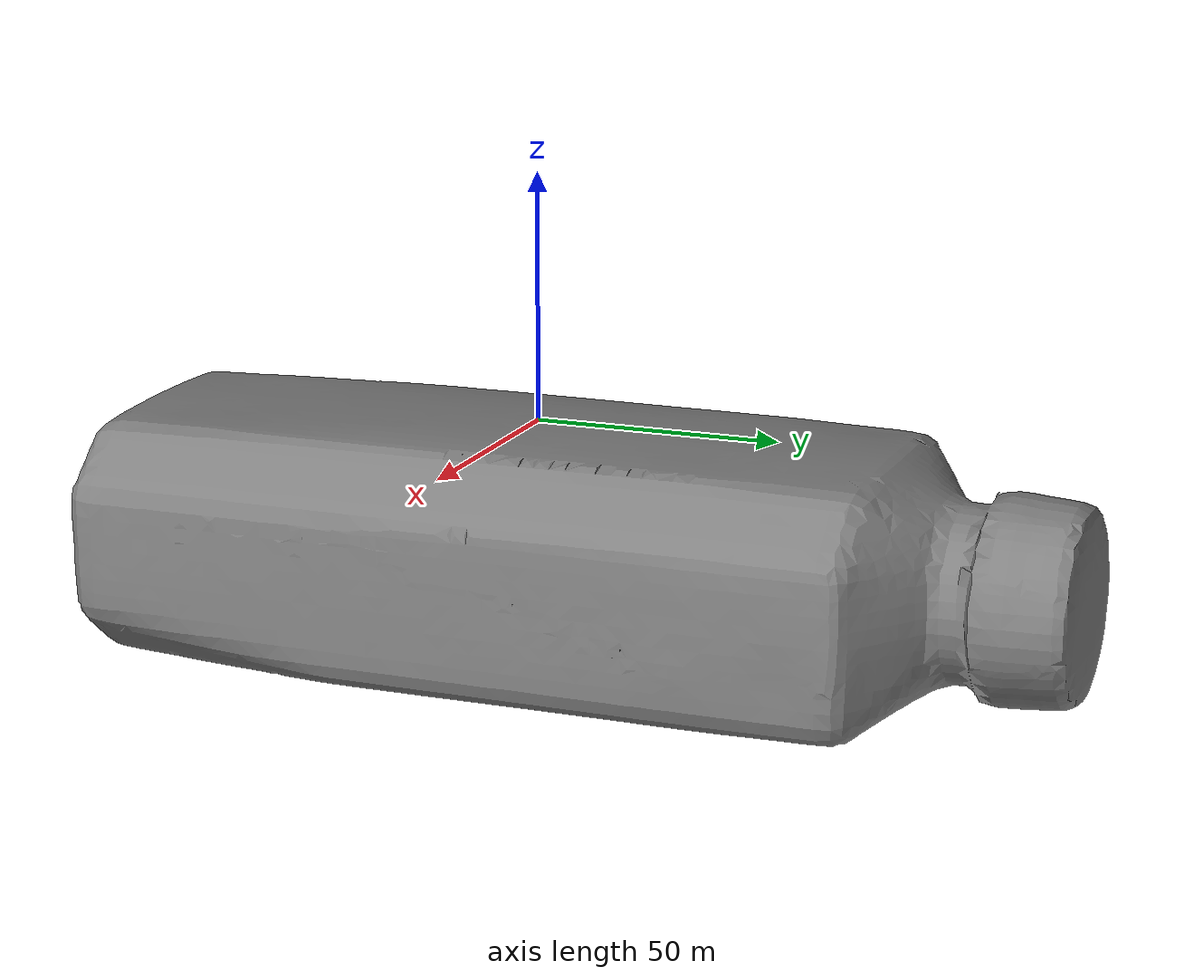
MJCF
<mujoco model="barleyWater_simple">
  <default>
    <default class="visual">
      <geom group="2" type="mesh" contype="0" conaffinity="0"/>
    </default>
    <default class="collision">
      <geom group="3" type="mesh"/>
    </default>
  </default>
  <asset>
    <mesh file="barleyWater_simple.obj"/>
    <mesh file="barleyWater_simple_collision_0.obj"/>
    <mesh file="barleyWater_simple_collision_1.obj"/>
    <mesh file="barleyWater_simple_collision_2.obj"/>
    <mesh file="barleyWater_simple_collision_3.obj"/>
    <mesh file="barleyWater_simple_collision_4.obj"/>
    <mesh file="barleyWater_simple_collision_5.obj"/>
    <mesh file="barleyWater_simple_collision_6.obj"/>
    <mesh file="barleyWater_simple_collision_7.obj"/>
    <mesh file="barleyWater_simple_collision_8.obj"/>
    <mesh file="barleyWater_simple_collision_9.obj"/>
    <mesh file="barleyWater_simple_collision_10.obj"/>
    <mesh file="barleyWater_simple_collision_11.obj"/>
    <mesh file="barleyWater_simple_collision_12.obj"/>
    <mesh file="barleyWater_simple_collision_13.obj"/>
    <mesh file="barleyWater_simple_collision_14.obj"/>
    <mesh file="barleyWater_simple_collision_15.obj"/>
    <mesh file="barleyWater_simple_collision_16.obj"/>
    <mesh file="barleyWater_simple_collision_17.obj"/>
    <mesh file="barleyWater_simple_collision_18.obj"/>
    <mesh file="barleyWater_simple_collision_19.obj"/>
    <mesh file="barleyWater_simple_collision_20.obj"/>
    <mesh file="barleyWater_simple_collision_21.obj"/>
    <mesh file="barleyWater_simple_collision_22.obj"/>
    <mesh file="barleyWater_simple_collision_23.obj"/>
    <mesh file="barleyWater_simple_collision_24.obj"/>
    <mesh file="barleyWater_simple_collision_25.obj"/>
    <mesh file="barleyWater_simple_collision_26.obj"/>
    <mesh file="barleyWater_simple_collision_27.obj"/>
    <mesh file="barleyWater_simple_collision_28.obj"/>
    <mesh file="barleyWater_simple_collision_29.obj"/>
    <mesh file="barleyWater_simple_collision_30.obj"/>
    <mesh file="barleyWater_simple_collision_31.obj"/>
    <mesh file="barleyWater_simple_collision_32.obj"/>
    <mesh file="barleyWater_simple_collision_33.obj"/>
    <mesh file="barleyWater_simple_collision_34.obj"/>
    <mesh file="barleyWater_simple_collision_35.obj"/>
    <mesh file="barleyWater_simple_collision_36.obj"/>
    <mesh file="barleyWater_simple_collision_37.obj"/>
    <mesh file="barleyWater_simple_collision_38.obj"/>
    <mesh file="barleyWater_simple_collision_39.obj"/>
    <mesh file="barleyWater_simple_collision_40.obj"/>
    <mesh file="barleyWater_simple_collision_41.obj"/>
    <mesh file="barleyWater_simple_collision_42.obj"/>
    <mesh file="barleyWater_simple_collision_43.obj"/>
    <mesh file="barleyWater_simple_collision_44.obj"/>
    <mesh file="barleyWater_simple_collision_45.obj"/>
    <mesh file="barleyWater_simple_collision_46.obj"/>
    <mesh file="barleyWater_simple_collision_47.obj"/>
    <mesh file="barleyWater_simple_collision_48.obj"/>
    <mesh file="barleyWater_simple_collision_49.obj"/>
    <mesh file="barleyWater_simple_collision_50.obj"/>
    <mesh file="barleyWater_simple_collision_51.obj"/>
    <mesh file="barleyWater_simple_collision_52.obj"/>
    <mesh file="barleyWater_simple_collision_53.obj"/>
    <mesh file="barleyWater_simple_collision_54.obj"/>
    <mesh file="barleyWater_simple_collision_55.obj"/>
    <mesh file="barleyWater_simple_collision_56.obj"/>
    <mesh file="barleyWater_simple_collision_57.obj"/>
    <mesh file="barleyWater_simple_collision_58.obj"/>
    <mesh file="barleyWater_simple_collision_59.obj"/>
    <mesh file="barleyWater_simple_collision_60.obj"/>
    <mesh file="barleyWater_simple_collision_61.obj"/>
    <mesh file="barleyWater_simple_collision_62.obj"/>
    <mesh file="barleyWater_simple_collision_63.obj"/>
    <mesh file="barleyWater_simple_collision_64.obj"/>
    <mesh file="barleyWater_simple_collision_65.obj"/>
    <mesh file="barleyWater_simple_collision_66.obj"/>
    <mesh file="barleyWater_simple_collision_67.obj"/>
    <mesh file="barleyWater_simple_collision_68.obj"/>
    <mesh file="barleyWater_simple_collision_69.obj"/>
    <mesh file="barleyWater_simple_collision_70.obj"/>
    <mesh file="barleyWater_simple_collision_71.obj"/>
    <mesh file="barleyWater_simple_collision_72.obj"/>
    <mesh file="barleyWater_simple_collision_73.obj"/>
    <mesh file="barleyWater_simple_collision_74.obj"/>
    <mesh file="barleyWater_simple_collision_75.obj"/>
    <mesh file="barleyWater_simple_collision_76.obj"/>
    <mesh file="barleyWater_simple_collision_77.obj"/>
    <mesh file="barleyWater_simple_collision_78.obj"/>
    <mesh file="barleyWater_simple_collision_79.obj"/>
    <mesh file="barleyWater_simple_collision_80.obj"/>
    <mesh file="barleyWater_simple_collision_81.obj"/>
    <mesh file="barleyWater_simple_collision_82.obj"/>
    <mesh file="barleyWater_simple_collision_83.obj"/>
    <mesh file="barleyWater_simple_collision_84.obj"/>
    <mesh file="barleyWater_simple_collision_85.obj"/>
    <mesh file="barleyWater_simple_collision_86.obj"/>
    <mesh file="barleyWater_simple_collision_87.obj"/>
    <mesh file="barleyWater_simple_collision_88.obj"/>
    <mesh file="barleyWater_simple_collision_89.obj"/>
    <mesh file="barleyWater_simple_collision_90.obj"/>
    <mesh file="barleyWater_simple_collision_91.obj"/>
    <mesh file="barleyWater_simple_collision_92.obj"/>
    <mesh file="barleyWater_simple_collision_93.obj"/>
    <mesh file="barleyWater_simple_collision_94.obj"/>
    <mesh file="barleyWater_simple_collision_95.obj"/>
    <mesh file="barleyWater_simple_collision_96.obj"/>
    <mesh file="barleyWater_simple_collision_97.obj"/>
    <mesh file="barleyWater_simple_collision_98.obj"/>
    <mesh file="barleyWater_simple_collision_99.obj"/>
    <mesh file="barleyWater_simple_collision_100.obj"/>
    <mesh file="barleyWater_simple_collision_101.obj"/>
    <mesh file="barleyWater_simple_collision_102.obj"/>
    <mesh file="barleyWater_simple_collision_103.obj"/>
    <mesh file="barleyWater_simple_collision_104.obj"/>
    <mesh file="barleyWater_simple_collision_105.obj"/>
    <mesh file="barleyWater_simple_collision_106.obj"/>
    <mesh file="barleyWater_simple_collision_107.obj"/>
    <mesh file="barleyWater_simple_collision_108.obj"/>
    <mesh file="barleyWater_simple_collision_109.obj"/>
    <mesh file="barleyWater_simple_collision_110.obj"/>
    <mesh file="barleyWater_simple_collision_111.obj"/>
    <mesh file="barleyWater_simple_collision_112.obj"/>
    <mesh file="barleyWater_simple_collision_113.obj"/>
    <mesh file="barleyWater_simple_collision_114.obj"/>
    <mesh file="barleyWater_simple_collision_115.obj"/>
    <mesh file="barleyWater_simple_collision_116.obj"/>
    <mesh file="barleyWater_simple_collision_117.obj"/>
    <mesh file="barleyWater_simple_collision_118.obj"/>
    <mesh file="barleyWater_simple_collision_119.obj"/>
    <mesh file="barleyWater_simple_collision_120.obj"/>
    <mesh file="barleyWater_simple_collision_121.obj"/>
    <mesh file="barleyWater_simple_collision_122.obj"/>
    <mesh file="barleyWater_simple_collision_123.obj"/>
    <mesh file="barleyWater_simple_collision_124.obj"/>
    <mesh file="barleyWater_simple_collision_125.obj"/>
    <mesh file="barleyWater_simple_collision_126.obj"/>
    <mesh file="barleyWater_simple_collision_127.obj"/>
    <mesh file="barleyWater_simple_collision_128.obj"/>
    <mesh file="barleyWater_simple_collision_129.obj"/>
    <mesh file="barleyWater_simple_collision_130.obj"/>
    <mesh file="barleyWater_simple_collision_131.obj"/>
    <mesh file="barleyWater_simple_collision_132.obj"/>
    <mesh file="barleyWater_simple_collision_133.obj"/>
    <mesh file="barleyWater_simple_collision_134.obj"/>
    <mesh file="barleyWater_simple_collision_135.obj"/>
    <mesh file="barleyWater_simple_collision_136.obj"/>
    <mesh file="barleyWater_simple_collision_137.obj"/>
    <mesh file="barleyWater_simple_collision_138.obj"/>
    <mesh file="barleyWater_simple_collision_139.obj"/>
    <mesh file="barleyWater_simple_collision_140.obj"/>
    <mesh file="barleyWater_simple_collision_141.obj"/>
    <mesh file="barleyWater_simple_collision_142.obj"/>
    <mesh file="barleyWater_simple_collision_143.obj"/>
    <mesh file="barleyWater_simple_collision_144.obj"/>
    <mesh file="barleyWater_simple_collision_145.obj"/>
    <mesh file="barleyWater_simple_collision_146.obj"/>
    <mesh file="barleyWater_simple_collision_147.obj"/>
    <mesh file="barleyWater_simple_collision_148.obj"/>
    <mesh file="barleyWater_simple_collision_149.obj"/>
    <mesh file="barleyWater_simple_collision_150.obj"/>
    <mesh file="barleyWater_simple_collision_151.obj"/>
    <mesh file="barleyWater_simple_collision_152.obj"/>
    <mesh file="barleyWater_simple_collision_153.obj"/>
    <mesh file="barleyWater_simple_collision_154.obj"/>
    <mesh file="barleyWater_simple_collision_155.obj"/>
    <mesh file="barleyWater_simple_collision_156.obj"/>
    <mesh file="barleyWater_simple_collision_157.obj"/>
    <mesh file="barleyWater_simple_collision_158.obj"/>
    <mesh file="barleyWater_simple_collision_159.obj"/>
    <mesh file="barleyWater_simple_collision_160.obj"/>
    <mesh file="barleyWater_simple_collision_161.obj"/>
    <mesh file="barleyWater_simple_collision_162.obj"/>
    <mesh file="barleyWater_simple_collision_163.obj"/>
    <mesh file="barleyWater_simple_collision_164.obj"/>
    <mesh file="barleyWater_simple_collision_165.obj"/>
    <mesh file="barleyWater_simple_collision_166.obj"/>
    <mesh file="barleyWater_simple_collision_167.obj"/>
    <mesh file="barleyWater_simple_collision_168.obj"/>
    <mesh file="barleyWater_simple_collision_169.obj"/>
    <mesh file="barleyWater_simple_collision_170.obj"/>
  </asset>
  <worldbody>
    <body name="barleyWater_simple">
      <geom mesh="barleyWater_simple" class="visual"/>
      <geom mesh="barleyWater_simple_collision_0" rgba="0.7464492834966274 0.05577091830789194 0.31792688405260827 1" class="collision"/>
      <geom mesh="barleyWater_simple_collision_1" rgba="0.3382243014731565 0.9774797835273886 0.9089900668124137 1" class="collision"/>
      <geom mesh="barleyWater_simple_collision_2" rgba="0.36922912813567144 0.34894492714319747 0.7263358113459197 1" class="collision"/>
      <geom mesh="barleyWater_simple_collision_3" rgba="0.40372319395249734 0.5723898522238356 0.49514846030969206 1" class="collision"/>
      <geom mesh="barleyWater_simple_collision_4" rgba="0.7003923106522492 0.3485784634374728 0.6065256640529494 1" class="collision"/>
      <geom mesh="barleyWater_simple_collision_5" rgba="0.45923058109167625 0.9890990481564592 0.3570596235275941 1" class="collision"/>
      <geom mesh="barleyWater_simple_collision_6" rgba="0.14367869351444995 0.1851469999557852 0.36235436968684887 1" class="collision"/>
      <geom mesh="barleyWater_simple_collision_7" rgba="0.2726682230469165 0.10128580838375989 0.8938127597337933 1" class="collision"/>
      <geom mesh="barleyWater_simple_collision_8" rgba="0.6001691808152552 0.01222359256733041 0.5253507935635127 1" class="collision"/>
      <geom mesh="barleyWater_simple_collision_9" rgba="0.3572335504064795 0.1574080494258192 0.03507164037631727 1" class="collision"/>
      <geom mesh="barleyWater_simple_collision_10" rgba="0.7332973848047418 0.08410517979531895 0.8171356371708043 1" class="collision"/>
      <geom mesh="barleyWater_simple_collision_11" rgba="0.31952351355160513 0.12991617441075853 0.9211351883691412 1" class="collision"/>
      <geom mesh="barleyWater_simple_collision_12" rgba="0.6965670041693639 0.9238987701367813 0.7535483524610844 1" class="collision"/>
      <geom mesh="barleyWater_simple_collision_13" rgba="0.9062377802168783 0.6337356985031043 0.5876902488384415 1" class="collision"/>
      <geom mesh="barleyWater_simple_collision_14" rgba="0.14896586239020515 0.33205276988440346 0.5323201097022294 1" class="collision"/>
      <geom mesh="barleyWater_simple_collision_15" rgba="0.9351225245011086 0.6746754865530911 0.673834043721977 1" class="collision"/>
      <geom mesh="barleyWater_simple_collision_16" rgba="0.11853122269343008 0.23806851272018192 0.21089094602849767 1" class="collision"/>
      <geom mesh="barleyWater_simple_collision_17" rgba="0.19238337570711705 0.2592117944647504 0.8486222253031603 1" class="collision"/>
      <geom mesh="barleyWater_simple_collision_18" rgba="0.5421043434181779 0.9549405603383725 0.9752623336860409 1" class="collision"/>
      <geom mesh="barleyWater_simple_collision_19" rgba="0.34805087772603627 0.0947070670548299 0.968044442482844 1" class="collision"/>
      <geom mesh="barleyWater_simple_collision_20" rgba="0.04321620523085545 0.9994606321938468 0.9584926375882428 1" class="collision"/>
      <geom mesh="barleyWater_simple_collision_21" rgba="0.013166968989268613 0.07952870705042181 0.8571657373695138 1" class="collision"/>
      <geom mesh="barleyWater_simple_collision_22" rgba="0.8195211502471971 0.48024572225268636 0.1440445124477615 1" class="collision"/>
      <geom mesh="barleyWater_simple_collision_23" rgba="0.4949959386351864 0.33017628455669146 0.3413644201950943 1" class="collision"/>
      <geom mesh="barleyWater_simple_collision_24" rgba="0.267678471583064 0.16197045972594748 0.8539450929048958 1" class="collision"/>
      <geom mesh="barleyWater_simple_collision_25" rgba="0.9624185915066162 0.23907950461661331 0.9394062734037454 1" class="collision"/>
      <geom mesh="barleyWater_simple_collision_26" rgba="0.9511190686943503 0.45887223305784863 0.5452229562903493 1" class="collision"/>
      <geom mesh="barleyWater_simple_collision_27" rgba="0.8188141223983489 0.7609786562405753 0.5311214369893981 1" class="collision"/>
      <geom mesh="barleyWater_simple_collision_28" rgba="0.5513897825337718 0.21836375097380367 0.4303455579319253 1" class="collision"/>
      <geom mesh="barleyWater_simple_collision_29" rgba="0.8719059940055042 0.6640748091772118 0.8401589377255909 1" class="collision"/>
      <geom mesh="barleyWater_simple_collision_30" rgba="0.5662392468695313 0.03002112726024586 0.7430789916328239 1" class="collision"/>
      <geom mesh="barleyWater_simple_collision_31" rgba="0.258735446106346 0.9293613754767451 0.5570873959785556 1" class="collision"/>
      <geom mesh="barleyWater_simple_collision_32" rgba="0.0717630859430477 0.548392626881141 0.26609232752432166 1" class="collision"/>
      <geom mesh="barleyWater_simple_collision_33" rgba="0.11999797513097155 0.20404179749363516 0.05494086486266614 1" class="collision"/>
      <geom mesh="barleyWater_simple_collision_34" rgba="0.49224579012039527 0.7264076682546374 0.3833861685972626 1" class="collision"/>
      <geom mesh="barleyWater_simple_collision_35" rgba="0.7315512625082807 0.9291634176252811 0.07303455673874315 1" class="collision"/>
      <geom mesh="barleyWater_simple_collision_36" rgba="0.20147164981615417 0.9007282781682016 0.3013985118649747 1" class="collision"/>
      <geom mesh="barleyWater_simple_collision_37" rgba="0.9770170637392042 0.6799388194301026 0.7960405985973871 1" class="collision"/>
      <geom mesh="barleyWater_simple_collision_38" rgba="0.41830181072991224 0.6544207864416467 0.6669494376662715 1" class="collision"/>
      <geom mesh="barleyWater_simple_collision_39" rgba="0.9420536252103862 0.24475570615453446 0.5207222290614114 1" class="collision"/>
      <geom mesh="barleyWater_simple_collision_40" rgba="0.3698718649964233 0.13214695918424357 0.6968376036926736 1" class="collision"/>
      <geom mesh="barleyWater_simple_collision_41" rgba="0.05273637601012826 0.9013476774911265 0.5649297685216668 1" class="collision"/>
      <geom mesh="barleyWater_simple_collision_42" rgba="0.3963114541003765 0.6007692308622002 0.9755810423406615 1" class="collision"/>
      <geom mesh="barleyWater_simple_collision_43" rgba="0.7184208842324515 0.9299676429317835 0.8429410547469456 1" class="collision"/>
      <geom mesh="barleyWater_simple_collision_44" rgba="0.2125681774134106 0.7666628019066887 0.07966588151571685 1" class="collision"/>
      <geom mesh="barleyWater_simple_collision_45" rgba="0.49602773804241285 0.04431631872291819 0.3350585752681581 1" class="collision"/>
      <geom mesh="barleyWater_simple_collision_46" rgba="0.876238928420385 0.3879994246588043 0.960659528164137 1" class="collision"/>
      <geom mesh="barleyWater_simple_collision_47" rgba="0.7530614305991689 0.496718921725976 0.9757925822341972 1" class="collision"/>
      <geom mesh="barleyWater_simple_collision_48" rgba="0.5858952785762686 0.4569633895571129 0.888851122939762 1" class="collision"/>
      <geom mesh="barleyWater_simple_collision_49" rgba="0.12737184885499586 0.9168981060843013 0.12915226165318516 1" class="collision"/>
      <geom mesh="barleyWater_simple_collision_50" rgba="0.37633851291060694 0.1247782065461126 0.4451940809828633 1" class="collision"/>
      <geom mesh="barleyWater_simple_collision_51" rgba="0.5076790601209642 0.6132472532811183 0.2229113216973968 1" class="collision"/>
      <geom mesh="barleyWater_simple_collision_52" rgba="0.8737237003143294 0.24245235943550436 0.23967811083886525 1" class="collision"/>
      <geom mesh="barleyWater_simple_collision_53" rgba="0.9697914661677983 0.4891093873775827 0.9534751239373754 1" class="collision"/>
      <geom mesh="barleyWater_simple_collision_54" rgba="0.3159785551224743 0.05874927753697279 0.7292913858041179 1" class="collision"/>
      <geom mesh="barleyWater_simple_collision_55" rgba="0.6230714036380046 0.13745272488561722 0.2734822508995991 1" class="collision"/>
      <geom mesh="barleyWater_simple_collision_56" rgba="0.511679949581188 0.48201024380987467 0.6973415113029247 1" class="collision"/>
      <geom mesh="barleyWater_simple_collision_57" rgba="0.9025760876377837 0.8177732946077608 0.8240857297502758 1" class="collision"/>
      <geom mesh="barleyWater_simple_collision_58" rgba="0.4718844670116553 0.8217555940976106 0.37236427887502555 1" class="collision"/>
      <geom mesh="barleyWater_simple_collision_59" rgba="0.9278399683521752 0.26192977727166555 0.7322861126371542 1" class="collision"/>
      <geom mesh="barleyWater_simple_collision_60" rgba="0.08317206625180795 0.017447126643435285 0.05482769972141599 1" class="collision"/>
      <geom mesh="barleyWater_simple_collision_61" rgba="0.6869623071047624 0.9466168843994996 0.766499457754115 1" class="collision"/>
      <geom mesh="barleyWater_simple_collision_62" rgba="0.8569153909587123 0.21747074887498463 0.7175311537583906 1" class="collision"/>
      <geom mesh="barleyWater_simple_collision_63" rgba="0.3243720311053794 0.8569111895349265 0.5667602788945676 1" class="collision"/>
      <geom mesh="barleyWater_simple_collision_64" rgba="0.6286753392744553 0.10713955836980238 0.8537347633484675 1" class="collision"/>
      <geom mesh="barleyWater_simple_collision_65" rgba="0.48176651972703943 0.5004911285878482 0.17373191710983937 1" class="collision"/>
      <geom mesh="barleyWater_simple_collision_66" rgba="0.4259902993999809 0.0738742894368386 0.015098440626904353 1" class="collision"/>
      <geom mesh="barleyWater_simple_collision_67" rgba="0.7362949465392133 0.16131845466425476 0.8900453753624448 1" class="collision"/>
      <geom mesh="barleyWater_simple_collision_68" rgba="0.24982126670471005 0.7181739473328267 0.578986419708637 1" class="collision"/>
      <geom mesh="barleyWater_simple_collision_69" rgba="0.012703446459277457 0.15509657180136138 0.10309927405826236 1" class="collision"/>
      <geom mesh="barleyWater_simple_collision_70" rgba="0.06048541394712459 0.9560948889858931 0.43019463202832164 1" class="collision"/>
      <geom mesh="barleyWater_simple_collision_71" rgba="0.32783057880266475 0.33540907692626054 0.16315573782858517 1" class="collision"/>
      <geom mesh="barleyWater_simple_collision_72" rgba="0.33252393882372844 0.7457985785972415 0.2605204525965539 1" class="collision"/>
      <geom mesh="barleyWater_simple_collision_73" rgba="0.11489675629156604 0.8191745343517347 0.5769241511409636 1" class="collision"/>
      <geom mesh="barleyWater_simple_collision_74" rgba="0.7733675206600984 0.2363809443518956 0.2755084256762581 1" class="collision"/>
      <geom mesh="barleyWater_simple_collision_75" rgba="0.3345397060565424 0.8288309132215298 0.9615619245757745 1" class="collision"/>
      <geom mesh="barleyWater_simple_collision_76" rgba="0.47031677771354286 0.023334721147000415 0.35563989849923916 1" class="collision"/>
      <geom mesh="barleyWater_simple_collision_77" rgba="0.7743982595874106 0.20388015591287656 0.4607879921066734 1" class="collision"/>
      <geom mesh="barleyWater_simple_collision_78" rgba="0.3316255673829257 0.16301700974211808 0.15974810922237748 1" class="collision"/>
      <geom mesh="barleyWater_simple_collision_79" rgba="0.042594289307615996 0.8840464972207466 0.9858234316532468 1" class="collision"/>
      <geom mesh="barleyWater_simple_collision_80" rgba="0.5792386562378992 0.6547422442682892 0.036873259543809156 1" class="collision"/>
      <geom mesh="barleyWater_simple_collision_81" rgba="0.14004934790597967 0.7176155056371929 0.3141823034782869 1" class="collision"/>
      <geom mesh="barleyWater_simple_collision_82" rgba="0.08748276173335712 0.14980264274466037 0.5979331471389217 1" class="collision"/>
      <geom mesh="barleyWater_simple_collision_83" rgba="0.9962995280627898 0.7513672822304838 0.368902806442018 1" class="collision"/>
      <geom mesh="barleyWater_simple_collision_84" rgba="0.8397630780086575 0.9743619957031799 0.2023414509954642 1" class="collision"/>
      <geom mesh="barleyWater_simple_collision_85" rgba="0.7852351589992863 0.7628209247053299 0.1697175970489193 1" class="collision"/>
      <geom mesh="barleyWater_simple_collision_86" rgba="0.8539801766873534 0.15750320945008367 0.5593292228298242 1" class="collision"/>
      <geom mesh="barleyWater_simple_collision_87" rgba="0.7722092091469972 0.1803840457629895 0.7066961153721834 1" class="collision"/>
      <geom mesh="barleyWater_simple_collision_88" rgba="0.8987115510124002 0.19936043220225663 0.9140261071584669 1" class="collision"/>
      <geom mesh="barleyWater_simple_collision_89" rgba="0.35006805799579954 0.3928382805551105 0.5963866993544025 1" class="collision"/>
      <geom mesh="barleyWater_simple_collision_90" rgba="0.31064262495826067 0.5803810895062733 0.47772848575252225 1" class="collision"/>
      <geom mesh="barleyWater_simple_collision_91" rgba="0.921657020986842 0.2177605183805451 0.16067124450527392 1" class="collision"/>
      <geom mesh="barleyWater_simple_collision_92" rgba="0.13636063832069456 0.9837977408935878 0.22045249485633234 1" class="collision"/>
      <geom mesh="barleyWater_simple_collision_93" rgba="0.9247286489893737 0.24924706185897072 0.1913008057406188 1" class="collision"/>
      <geom mesh="barleyWater_simple_collision_94" rgba="0.41134176038491355 0.8847529666036037 0.998248146362062 1" class="collision"/>
      <geom mesh="barleyWater_simple_collision_95" rgba="0.32721149030511865 0.11287501399533517 0.5275721955703248 1" class="collision"/>
      <geom mesh="barleyWater_simple_collision_96" rgba="0.6180648519738018 0.10765425109070381 0.8863025220455972 1" class="collision"/>
      <geom mesh="barleyWater_simple_collision_97" rgba="0.28097930901139556 0.4685505472999332 0.25455416329555625 1" class="collision"/>
      <geom mesh="barleyWater_simple_collision_98" rgba="0.0316151974752199 0.006416389139289436 0.9100508933282783 1" class="collision"/>
      <geom mesh="barleyWater_simple_collision_99" rgba="0.1449258888027508 0.18794704130191475 0.5176403495785767 1" class="collision"/>
      <geom mesh="barleyWater_simple_collision_100" rgba="0.8511411293199521 0.9498080720940821 0.17220043371888116 1" class="collision"/>
      <geom mesh="barleyWater_simple_collision_101" rgba="0.9294571308441294 0.38220798820446455 0.9512902503381238 1" class="collision"/>
      <geom mesh="barleyWater_simple_collision_102" rgba="0.5370916720041704 0.6893503940341369 0.20456878146584478 1" class="collision"/>
      <geom mesh="barleyWater_simple_collision_103" rgba="0.21282362096492735 0.8693397083813199 0.9010998386750506 1" class="collision"/>
      <geom mesh="barleyWater_simple_collision_104" rgba="0.6036018943522932 0.5612213255597838 0.2286476497537867 1" class="collision"/>
      <geom mesh="barleyWater_simple_collision_105" rgba="0.12290798801294955 0.35910896800680625 0.34406322678410206 1" class="collision"/>
      <geom mesh="barleyWater_simple_collision_106" rgba="0.6916843695862759 0.5918679699281176 0.2814376268308283 1" class="collision"/>
      <geom mesh="barleyWater_simple_collision_107" rgba="0.4966690952167827 0.16433493724094728 0.922938638770334 1" class="collision"/>
      <geom mesh="barleyWater_simple_collision_108" rgba="0.23779751879958744 0.5112666490713689 0.03277196850435948 1" class="collision"/>
      <geom mesh="barleyWater_simple_collision_109" rgba="0.8687713778245132 0.19219913215348317 0.5337176922627032 1" class="collision"/>
      <geom mesh="barleyWater_simple_collision_110" rgba="0.13723811165590538 0.4970054997895492 0.6524358319908118 1" class="collision"/>
      <geom mesh="barleyWater_simple_collision_111" rgba="0.9363930051069782 0.39602808314747906 0.43969963510568666 1" class="collision"/>
      <geom mesh="barleyWater_simple_collision_112" rgba="0.9448720318927873 0.5609138512650125 0.21082537404703838 1" class="collision"/>
      <geom mesh="barleyWater_simple_collision_113" rgba="0.9975456291676176 0.6248808258339938 0.996074283349588 1" class="collision"/>
      <geom mesh="barleyWater_simple_collision_114" rgba="0.9670760400106126 0.7790338153918653 0.8899170569507485 1" class="collision"/>
      <geom mesh="barleyWater_simple_collision_115" rgba="0.27425201792127263 0.637554289601222 0.81564884942488 1" class="collision"/>
      <geom mesh="barleyWater_simple_collision_116" rgba="0.26591265651293816 0.9511856698214354 0.2428177356081851 1" class="collision"/>
      <geom mesh="barleyWater_simple_collision_117" rgba="0.7225881402983426 0.8698772028717296 0.4120652356232156 1" class="collision"/>
      <geom mesh="barleyWater_simple_collision_118" rgba="0.44304803093468414 0.8774018849736861 0.6337639664236794 1" class="collision"/>
      <geom mesh="barleyWater_simple_collision_119" rgba="0.46602121741421154 0.09479769593239751 0.30703744649653286 1" class="collision"/>
      <geom mesh="barleyWater_simple_collision_120" rgba="0.9888270007249851 0.8379433416846414 0.5449615077004366 1" class="collision"/>
      <geom mesh="barleyWater_simple_collision_121" rgba="0.05987923109645232 0.09174249562443404 0.9183071574521594 1" class="collision"/>
      <geom mesh="barleyWater_simple_collision_122" rgba="0.479838400016796 0.5894448738333733 0.1374198096100302 1" class="collision"/>
      <geom mesh="barleyWater_simple_collision_123" rgba="0.22697795293181178 0.5174131185608745 0.09082171337899902 1" class="collision"/>
      <geom mesh="barleyWater_simple_collision_124" rgba="0.614034981352442 0.3167790225032152 0.903422560152141 1" class="collision"/>
      <geom mesh="barleyWater_simple_collision_125" rgba="0.8586504033299979 0.5532186421126432 0.35795108211170434 1" class="collision"/>
      <geom mesh="barleyWater_simple_collision_126" rgba="0.335604130633806 0.5719098825496088 0.9926239992071504 1" class="collision"/>
      <geom mesh="barleyWater_simple_collision_127" rgba="0.23911510288537385 0.5456014389053809 0.7070679275429783 1" class="collision"/>
      <geom mesh="barleyWater_simple_collision_128" rgba="0.7556221609587415 0.24797381882410108 0.33359434201104676 1" class="collision"/>
      <geom mesh="barleyWater_simple_collision_129" rgba="0.7719604365967854 0.9361198818181666 0.7136657658494663 1" class="collision"/>
      <geom mesh="barleyWater_simple_collision_130" rgba="0.4826262862155535 0.73218953083235 0.5660486409489593 1" class="collision"/>
      <geom mesh="barleyWater_simple_collision_131" rgba="0.0366659566159675 0.25541824126731294 0.4924679977894505 1" class="collision"/>
      <geom mesh="barleyWater_simple_collision_132" rgba="0.8356739182331991 0.769313231136621 0.4225380522159877 1" class="collision"/>
      <geom mesh="barleyWater_simple_collision_133" rgba="0.7765366720727946 0.10454273362581623 0.818541918300743 1" class="collision"/>
      <geom mesh="barleyWater_simple_collision_134" rgba="0.5604424748026907 0.1018711119802519 0.6415675831695725 1" class="collision"/>
      <geom mesh="barleyWater_simple_collision_135" rgba="0.6593276397401434 0.35864848934468285 0.15317397645200492 1" class="collision"/>
      <geom mesh="barleyWater_simple_collision_136" rgba="0.9634706215647648 0.4611194331690781 0.1997027589783491 1" class="collision"/>
      <geom mesh="barleyWater_simple_collision_137" rgba="0.10542173977926028 0.5879646173626722 0.7748768477557302 1" class="collision"/>
      <geom mesh="barleyWater_simple_collision_138" rgba="0.8766745858372963 0.7125463046084657 0.9020931616147153 1" class="collision"/>
      <geom mesh="barleyWater_simple_collision_139" rgba="0.6773776617288331 0.24461693610736202 0.6595133026683822 1" class="collision"/>
      <geom mesh="barleyWater_simple_collision_140" rgba="0.3869812160090501 0.3900342854164437 0.8104111175897167 1" class="collision"/>
      <geom mesh="barleyWater_simple_collision_141" rgba="0.7839650164887271 0.744044695454859 0.3072442235910381 1" class="collision"/>
      <geom mesh="barleyWater_simple_collision_142" rgba="0.13923698150570962 0.18527293861599725 0.7190810505184847 1" class="collision"/>
      <geom mesh="barleyWater_simple_collision_143" rgba="0.6700004660169335 0.6171349381972473 0.31357293723778223 1" class="collision"/>
      <geom mesh="barleyWater_simple_collision_144" rgba="0.21046597498871245 0.4426945400426484 0.8360676548626702 1" class="collision"/>
      <geom mesh="barleyWater_simple_collision_145" rgba="0.1209593805159409 0.668852420514691 0.4523742262028623 1" class="collision"/>
      <geom mesh="barleyWater_simple_collision_146" rgba="0.4387155622788359 0.6021254750366735 0.2709215640989485 1" class="collision"/>
      <geom mesh="barleyWater_simple_collision_147" rgba="0.1380183087026453 0.5486322578018785 0.9046434408768492 1" class="collision"/>
      <geom mesh="barleyWater_simple_collision_148" rgba="0.08471177112404282 0.011910678531691365 0.4631908615903113 1" class="collision"/>
      <geom mesh="barleyWater_simple_collision_149" rgba="0.8568669331046094 0.4360270760874291 0.5027572332304685 1" class="collision"/>
      <geom mesh="barleyWater_simple_collision_150" rgba="0.8213558034465425 0.297196566059136 0.9412437921353657 1" class="collision"/>
      <geom mesh="barleyWater_simple_collision_151" rgba="0.7563903568911609 0.2893421777557279 0.13266907116486182 1" class="collision"/>
      <geom mesh="barleyWater_simple_collision_152" rgba="0.111244681339835 0.5702385614527125 0.7043184296626046 1" class="collision"/>
      <geom mesh="barleyWater_simple_collision_153" rgba="0.3898588580865954 0.6080482294143992 0.7428720651496397 1" class="collision"/>
      <geom mesh="barleyWater_simple_collision_154" rgba="0.6181144428472851 0.430434331291055 0.11735963133111016 1" class="collision"/>
      <geom mesh="barleyWater_simple_collision_155" rgba="0.5767428684131676 0.10055222248206641 0.2154324455063451 1" class="collision"/>
      <geom mesh="barleyWater_simple_collision_156" rgba="0.06275539596502189 0.9342084855637168 0.2868345967094523 1" class="collision"/>
      <geom mesh="barleyWater_simple_collision_157" rgba="0.21574347358493662 0.9754510058035214 0.00376950702579526 1" class="collision"/>
      <geom mesh="barleyWater_simple_collision_158" rgba="0.28183365464501764 0.445844042873511 0.8354855942061625 1" class="collision"/>
      <geom mesh="barleyWater_simple_collision_159" rgba="0.25852682368835556 0.11311494382867415 0.7660296871702673 1" class="collision"/>
      <geom mesh="barleyWater_simple_collision_160" rgba="0.16159485191962641 0.5033083457956377 0.13638811150603158 1" class="collision"/>
      <geom mesh="barleyWater_simple_collision_161" rgba="0.7604808034063261 0.04021191463237306 0.5808394465851359 1" class="collision"/>
      <geom mesh="barleyWater_simple_collision_162" rgba="0.8612215569130042 0.6051525998158304 0.697125325715335 1" class="collision"/>
      <geom mesh="barleyWater_simple_collision_163" rgba="0.32170695310271413 0.3373390812171261 0.2070131471418194 1" class="collision"/>
      <geom mesh="barleyWater_simple_collision_164" rgba="0.45129015862161337 0.5234762562742242 0.5234711317406193 1" class="collision"/>
      <geom mesh="barleyWater_simple_collision_165" rgba="0.43591297339443413 0.7799795962630947 0.2757538376576998 1" class="collision"/>
      <geom mesh="barleyWater_simple_collision_166" rgba="0.9840916294747417 0.3578402913513681 0.2583702246121593 1" class="collision"/>
      <geom mesh="barleyWater_simple_collision_167" rgba="0.7818294633908534 0.46669237320932455 0.9363539730535733 1" class="collision"/>
      <geom mesh="barleyWater_simple_collision_168" rgba="0.43699192312715407 0.6038458377343784 0.5600796576715505 1" class="collision"/>
      <geom mesh="barleyWater_simple_collision_169" rgba="0.11156645605053273 0.5228644583959955 0.8179242150759728 1" class="collision"/>
      <geom mesh="barleyWater_simple_collision_170" rgba="0.5190354767944211 0.36251437662171393 0.624511069466617 1" class="collision"/>
    </body>
  </worldbody>
</mujoco>
